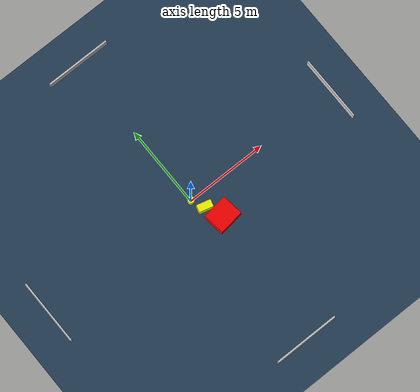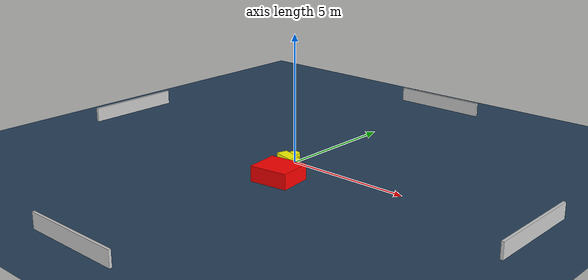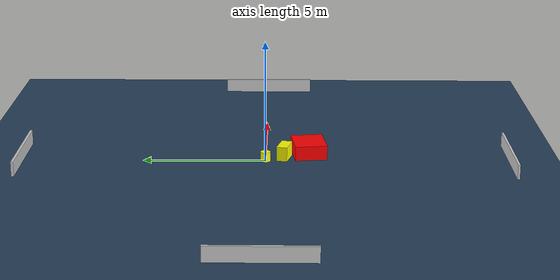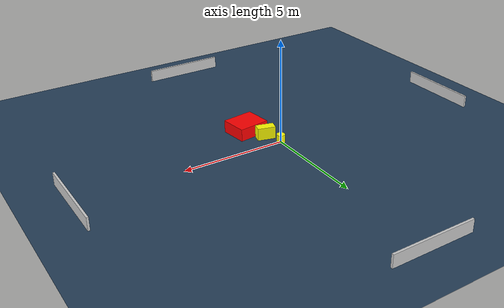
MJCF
<?xml version="1.0" ?>
<mujoco model="generated_environment">
  <option timestep="0.01" integrator="RK4" cone="elliptic"/>
  <default>
    <geom density="1"/>
  </default>
  <asset>
    <texture builtin="gradient" height="3072" name="skybox" rgb1="0.3 0.5 0.7" rgb2="0 0 0" type="skybox" width="512"/>
    <texture builtin="checker" height="300" name="groundplane" rgb1="0.2 0.3 0.4" rgb2="0.1 0.2 0.3" type="2d" width="300"/>
    <material name="groundplane" reflectance="0.2" texrepeat="5 5" texture="groundplane"/>
  </asset>
  <worldbody>
    <light dir="0 0 -1" directional="true" pos="0 0 1.5"/>
    <geom condim="3" friction="0.5 0.005 0.001" material="groundplane" name="floor" pos="0 0 0" size="0 0 0.05" type="plane"/>
    <body name="walls">
      <geom name="wall_1" condim="4" pos="-10.0 0.0 0.3" rgba="0.800000011920929 0.800000011920929 0.800000011920929 1.0" size="0.05 2.0 0.3" type="box"/>
      <geom name="wall_2" condim="4" pos="10.0 0.0 0.3" rgba="0.800000011920929 0.800000011920929 0.800000011920929 1.0" size="0.05 2.0 0.3" type="box"/>
      <geom name="wall_3" condim="4" pos="0.0 -10.0 0.3" rgba="0.800000011920929 0.800000011920929 0.800000011920929 1.0" size="2.0 0.05 0.3" type="box"/>
      <geom name="wall_4" condim="4" pos="0.0 10.0 0.3" rgba="0.800000011920929 0.800000011920929 0.800000011920929 1.0" size="2.0 0.05 0.3" type="box"/>
    </body>
    <body name="robot">
      <joint name="joint_x" type="slide" pos="0 0 0" axis="1 0 0"/>
      <joint name="joint_y" type="slide" pos="0 0 0" axis="0 1 0"/>
      <geom name="robot" type="cylinder" pos="0.0 0.0 0.2" size="0.2 0.2 0.0" mass="5.0" friction="1.0 0.005 0.0001" condim="4" rgba="1.0 1.0 0.0 1.0"/>
    </body>
    <body name="obstacle_1_movable">
      <geom name="obstacle_1_movable" condim="4" pos="0.3636284628515476 -0.7718629127131241 0.3" euler="0 0 75.03898663614673" friction="0.0 0.005 0.001" rgba="1.0 1.0 0.0 1.0" size="0.21861137680265672 0.4334098868371814 0.3" type="box" mass="0.1"/>
      <joint type="free"/>
    </body>
    <body name="obstacle_2_static">
      <geom name="obstacle_2_static" condim="4" pos="0.8314697638632214 -1.778009309315879 0.3" euler="0 0 277.54338569447856" friction="0.0 0.005 0.001" rgba="1.0 0.0 0.0 1.0" size="0.6598339502058673 0.7655428457772224 0.3" type="box"/>
    </body>
  </worldbody>
  <actuator>
    <motor name="actuator_x" joint="joint_x" gear="1" ctrlrange="-1 1"/>
    <motor name="actuator_y" joint="joint_y" gear="1" ctrlrange="-1 1"/>
  </actuator>
</mujoco>
